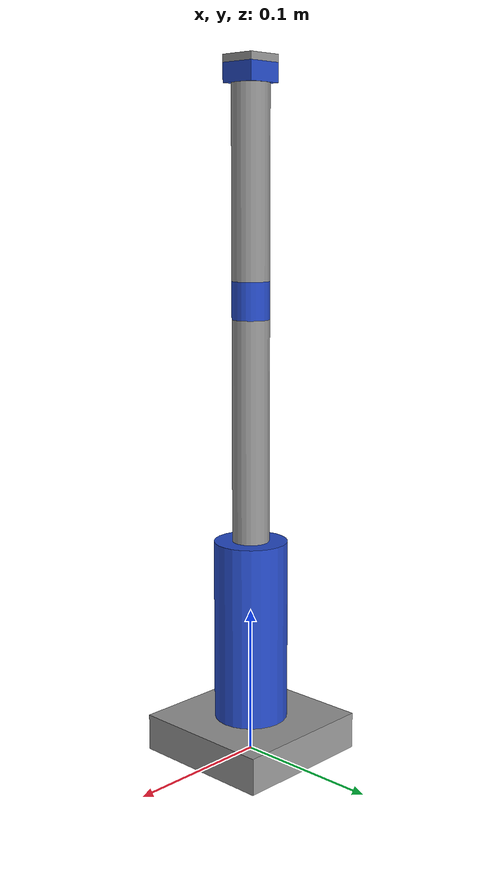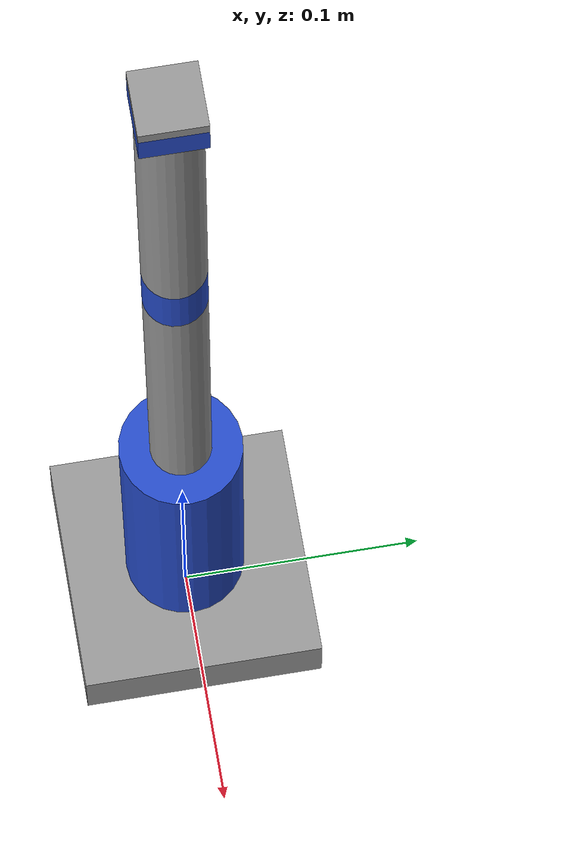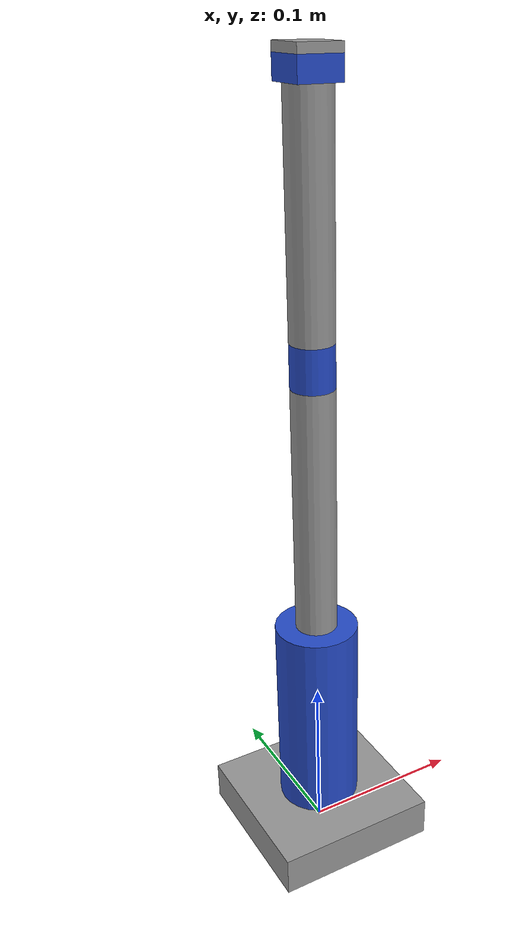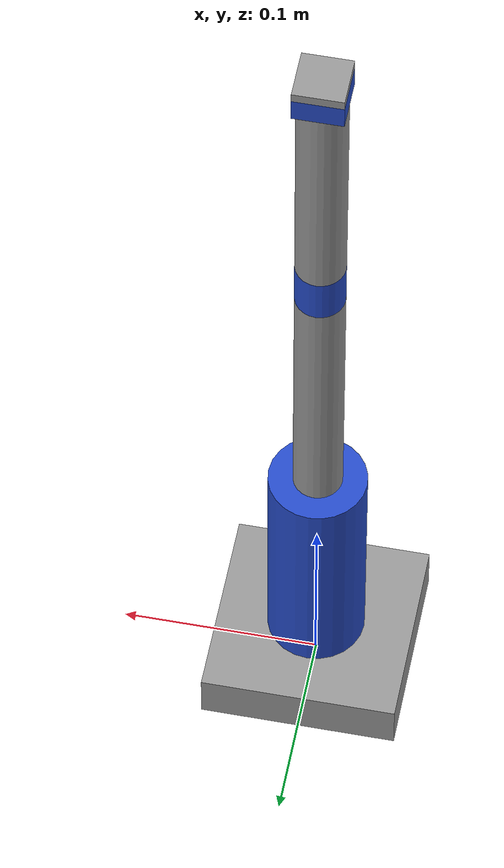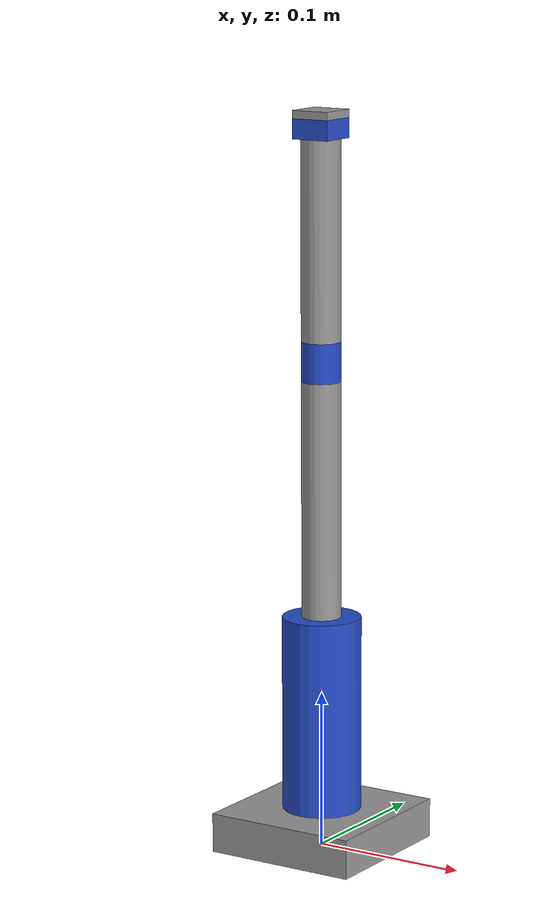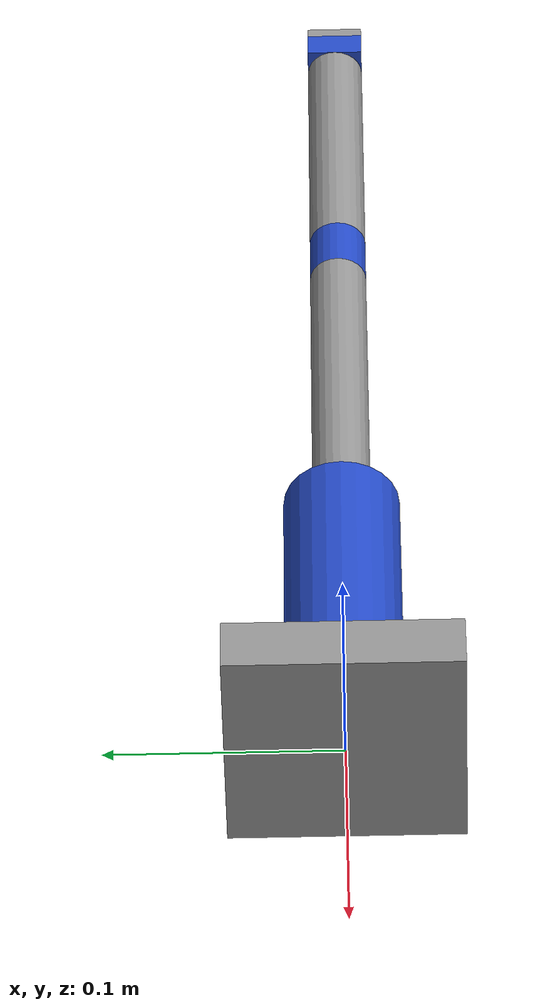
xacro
<?xml version="1.0"?>
<robot xmlns:xacro="http://www.ros.org/wiki/xacro"> # name="arm"

    <xacro:property name="arm_base_length" value="0.1" />
    <xacro:property name="arm_base_width" value="0.1" />
    <xacro:property name="arm_base_height" value="0.025" />

    <xacro:property name="arm_shoulder_radius" value="0.0250" />
    <xacro:property name="arm_shoulder_length" value="0.125" />

    <xacro:property name="arm_upper_arm_radius" value="0.0125" />
    <xacro:property name="arm_upper_arm_length" value="0.15" />

    <xacro:property name="arm_elbow_radius" value="0.0125" />
    <xacro:property name="arm_elbow_length" value="0.025" />

    <xacro:property name="arm_forearm_radius" value="0.0125" />
    <xacro:property name="arm_forearm_length" value="0.125" />

    <xacro:property name="arm_wrist_length" value="0.025" />
    <xacro:property name="arm_wrist_width" value="0.025" />
    <xacro:property name="arm_wrist_height" value="0.0125" />

    <xacro:property name="arm_hand_length" value="0.025" />
    <xacro:property name="arm_hand_width" value="0.025" />
    <xacro:property name="arm_hand_height" value="0.005" />

    <link name="arm_base_link">
        <visual>
            <geometry>
                <box size="${arm_base_length} ${arm_base_width} ${arm_base_height}" />
            </geometry>
            <origin xyz="0 0 ${arm_base_height / 2.0}" rpy="0 0 0" />
            <material name="grey" />
        </visual>
        <collision>
            <geometry>
                <box size="${arm_base_length} ${arm_base_width} ${arm_base_height}" />
            </geometry>
            <origin xyz="0 0 ${arm_base_height / 2.0}" rpy="0 0 0" />
        </collision>
    </link>

    <link name="arm_shoulder_link">
        <visual>
            <geometry>
                <cylinder radius="${arm_shoulder_radius}" length="${arm_shoulder_length}" />
            </geometry>
            <origin xyz="0 0 ${arm_shoulder_length / 2.0}" rpy="0 0 0" />
            <material name="blue" />
        </visual>
        <collision>
            <geometry>
                <cylinder radius="${arm_shoulder_radius}" length="${arm_shoulder_length}" />
            </geometry>
            <origin xyz="0 0 ${arm_shoulder_length / 2.0}" rpy="0 0 0" />
        </collision>
    </link>

    <link name="arm_upper_arm_link">
        <visual>
            <geometry>
                <cylinder radius="${arm_upper_arm_radius}" length="${arm_upper_arm_length}" />
            </geometry>
            <origin xyz="0 0 ${arm_upper_arm_length / 2.0}" rpy="0 0 0" />
            <material name="grey" />
        </visual>
        <collision>
            <geometry>
                <cylinder radius="${arm_upper_arm_radius}" length="${arm_upper_arm_length}" />
            </geometry>
            <origin xyz="0 0 ${arm_upper_arm_length / 2.0}" rpy="0 0 0" />
        </collision>
    </link>

    <link name="arm_elbow_link">
        <visual>
            <geometry>
                <cylinder radius="${arm_elbow_radius}" length="${arm_elbow_length}" />
            </geometry>
            <origin xyz="0 0 ${arm_elbow_length / 2.0}" rpy="0 0 0" />
            <material name="blue" />
        </visual>
        <collision>
            <geometry>
                <cylinder radius="${arm_elbow_radius}" length="${arm_elbow_length}" />
            </geometry>
            <origin xyz="0 0 ${arm_elbow_length / 2.0}" rpy="0 0 0" />
        </collision>
    </link>

    <link name="arm_forearm_link">
        <visual>
            <geometry>
                <cylinder radius="${arm_forearm_radius}" length="${arm_forearm_length}" />
            </geometry>
            <origin xyz="0 0 ${arm_forearm_length / 2.0}" rpy="0 0 0" />
            <material name="grey" />
        </visual>
        <collision>
            <geometry>
                <cylinder radius="${arm_forearm_radius}" length="${arm_forearm_length}" />
            </geometry>
            <origin xyz="0 0 ${arm_forearm_length / 2.0}" rpy="0 0 0" />
        </collision>
    </link>

    <link name="arm_wrist_link">
        <visual>
            <geometry>
                <box size="${arm_wrist_length} ${arm_wrist_width} ${arm_wrist_height}"/>
            </geometry>
            <origin xyz="0 0 ${arm_wrist_height / 2.0}" rpy="0 0 0" />
            <material name="blue" />
        </visual>
        <collision>
            <geometry>
                <box size="${arm_wrist_length} ${arm_wrist_width} ${arm_wrist_height}"/>
            </geometry>
            <origin xyz="0 0 ${arm_wrist_height / 2.0}" rpy="0 0 0" />
        </collision>
    </link>

    <link name="arm_hand_link">
        <visual>
            <geometry>
                <box size="${arm_hand_length} ${arm_hand_width} ${arm_hand_height}"/>
            </geometry>
            <origin xyz="0 0 ${arm_hand_height / 2.0}" rpy="0 0 0" />
            <material name="grey" />
        </visual>
        <collision>
            <geometry>
                <box size="${arm_hand_length} ${arm_hand_width} ${arm_hand_height}"/>
            </geometry>
            <origin xyz="0 0 ${arm_hand_height / 2.0}" rpy="0 0 0" />
        </collision>
    </link>

    <link name="tool0" />

    <joint name="arm_joint1" type="revolute">
        <parent link="arm_base_link" />
        <child link="arm_shoulder_link" />
        <origin xyz="0 0 ${arm_base_height}" rpy="0 0 0" />
        <axis xyz="0 0 1" />
        <limit lower="${-pi}" upper="${pi}" effort="100" velocity="100" />
        <dynamics friction="0.05" damping="0.1" />
    </joint>

    <joint name="arm_joint2" type="revolute">
        <parent link="arm_shoulder_link" />
        <child link="arm_upper_arm_link" />
        <origin xyz="0 0 ${arm_shoulder_length}" rpy="0 0 0" />
        <axis xyz="0 1 0" />
        <limit lower="0" upper="2.5" effort="100" velocity="100" />
        <dynamics friction="0.05" damping="0.1" />
    </joint>

    <joint name="arm_joint3" type="revolute">
        <parent link="arm_upper_arm_link" />
        <child link="arm_elbow_link" />
        <origin xyz="0 0 ${arm_upper_arm_length}" rpy="0 0 0" />
        <axis xyz="0 1 0" />
        <limit lower="0" upper="2.5" effort="100" velocity="100" />
        <dynamics friction="0.05" damping="0.1" />
    </joint>

    <joint name="arm_joint4" type="revolute">
        <parent link="arm_elbow_link" />
        <child link="arm_forearm_link" />
        <origin xyz="0 0 ${arm_elbow_length}" rpy="0 0 0" />
        <axis xyz="0 0 1" />
        <limit lower="${-pi}" upper="${pi}" effort="100" velocity="100" />
        <dynamics friction="0.05" damping="0.1" />
    </joint>

    <joint name="arm_joint5" type="revolute">
        <parent link="arm_forearm_link" />
        <child link="arm_wrist_link" />
        <origin xyz="0 0 ${arm_forearm_length}" rpy="0 0 0" />
        <axis xyz="0 1 0" />
        <limit lower="${-pi/2}" upper="${pi/2}" effort="100" velocity="100" />
        <dynamics friction="0.05" damping="0.1" />
    </joint>

    <joint name="arm_joint6" type="continuous">
        <parent link="arm_wrist_link" />
        <child link="arm_hand_link" />
        <origin xyz="0 0 ${arm_wrist_height}" rpy="0 0 0" />
        <axis xyz="0 0 1" />
        <dynamics friction="0.05" damping="0.1" />
    </joint>

    <joint name="hand_tool_joint" type="fixed">
        <parent link="arm_hand_link" />
        <child link="tool0" />
        <origin xyz="0 0 ${arm_hand_height}" rpy="0 0 0" />
    </joint>

</robot>
